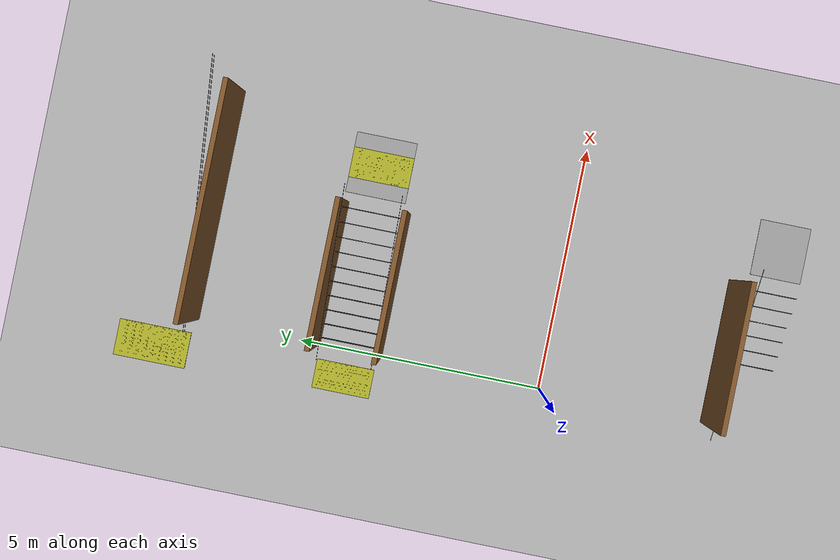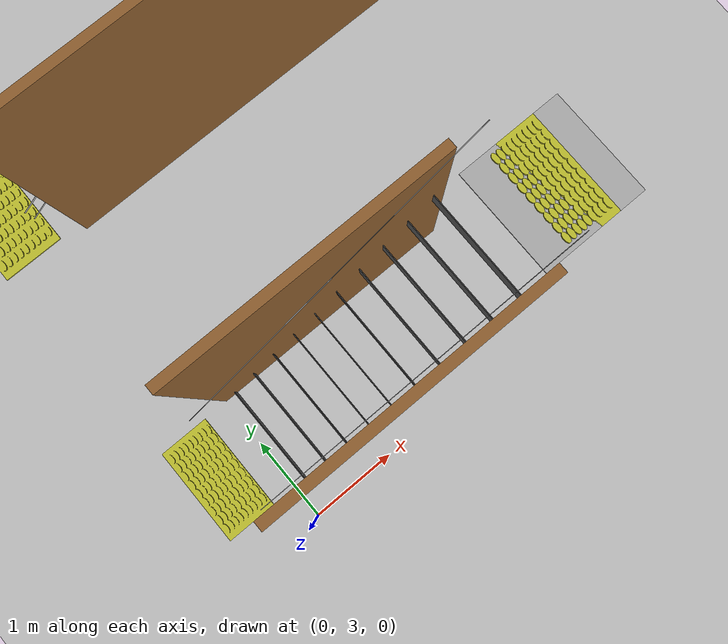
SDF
<sdf version="1.7">
 <world name="default">
  <include><uri>https://fuel.gazebosim.org/1.0/openrobotics/models/Ground%20Plane</uri></include>
  <include><uri>https://fuel.gazebosim.org/1.0/openrobotics/models/Sun</uri></include>
  <model name="tactile_strip_tactile_strip_before_2380114d-61c0-4db8-95cd-3a11f1002797_8a8556f7-3a6e-456c-b705-32682d6e687a">
   <static>true</static>
   <pose>-0.6 4.0 0.0 0 0 0</pose>
   <link name="link">
    <visual name="visual">
     <geometry>
      <mesh><uri>model://data/world-generator/assets/tactile_strip_unit.stl</uri><scale>0.6 1.2 1</scale></mesh>
     </geometry>
     <material><ambient>0.8 0.8 0.2 1</ambient><diffuse>0.8 0.8 0.2 1</diffuse></material>
    </visual>
    <collision name="collision"><geometry><box><size>0.6 1.2 0.02</size></box></geometry></collision>
   </link>
  </model>
  <model name="tactile_strip_tactile_strip_after_2380114d-61c0-4db8-95cd-3a11f1002797_c2bafa8b-1b6a-454e-ac4f-f03ee88ef546">
   <static>true</static>
   <pose>3.749999999999999 4.0 1.5999999999999999 0 0 0</pose>
   <link name="link">
    <visual name="visual">
     <geometry>
      <mesh><uri>model://data/world-generator/assets/tactile_strip_unit.stl</uri><scale>0.6 1.2 1</scale></mesh>
     </geometry>
     <material><ambient>0.8 0.8 0.2 1</ambient><diffuse>0.8 0.8 0.2 1</diffuse></material>
    </visual>
    <collision name="collision"><geometry><box><size>0.6 1.2 0.02</size></box></geometry></collision>
   </link>
  </model>
  <model name="handrail_handrail_2380114d-61c0-4db8-95cd-3a11f1002797_{'height': 0.95, 'extension_length': 0.3, 'offset_from_wall': 0.04}_dd895d16-0f13-45a6-bb25-cd8e64cd3b47">
   <static>true</static>
   <pose>1.5 3.44 1.75 0 -0.48995732625372834 0</pose>
   <link name="link">
    <visual name="visual">
     <geometry>
      <mesh><uri>model://data/world-generator/assets/handrail_unit.stl</uri><scale>4.0 0.25 0.95</scale></mesh>
     </geometry>
     <material><ambient>0.7 0.7 0.7 1</ambient><diffuse>0.7 0.7 0.7 1</diffuse></material>
    </visual>
    <collision name="collision">
     <geometry><cylinder><radius>0.125</radius><length>4.0</length></cylinder></geometry>
    </collision>
   </link>
  </model>
  <model name="handrail_handrail_2380114d-61c0-4db8-95cd-3a11f1002797_{'height': 0.95, 'extension_length': 0.3, 'offset_from_wall': 0.04}_a3f463f3-668c-4367-9701-24da02bdedce">
   <static>true</static>
   <pose>1.5 4.56 1.75 0 -0.48995732625372834 0</pose>
   <link name="link">
    <visual name="visual">
     <geometry>
      <mesh><uri>model://data/world-generator/assets/handrail_unit.stl</uri><scale>4.0 0.25 0.95</scale></mesh>
     </geometry>
     <material><ambient>0.7 0.7 0.7 1</ambient><diffuse>0.7 0.7 0.7 1</diffuse></material>
    </visual>
    <collision name="collision">
     <geometry><cylinder><radius>0.125</radius><length>4.0</length></cylinder></geometry>
    </collision>
   </link>
  </model>
  <model name="riser_riser_0f4c67bf-021a-45f8-92c6-092875decb3c_0b168ed3-7ea6-4166-9fbf-4b085acc85c7">
   <static>true</static>
   <pose>0.15 4.0 0.0 0 0 0</pose>
   <link name="link">
    <visual name="visual">
     <geometry>
      <mesh><uri>model://data/world-generator/assets/riser_unit.stl</uri><scale>1 1.2 0.16</scale></mesh>
     </geometry>
     <material><ambient>0.3 0.3 0.3 1</ambient><diffuse>0.3 0.3 0.3 1</diffuse></material>
    </visual>
    <collision name="collision"><geometry><box><size>0.01 1.2 0.16</size></box></geometry></collision>
   </link>
  </model>
  <model name="riser_riser_56ba4ca1-7edb-4753-bffd-d643aa920a7e_2e5eaf9a-eeb9-49a0-b7e6-5f50fb1637c4">
   <static>true</static>
   <pose>0.44999999999999996 4.0 0.16 0 0 0</pose>
   <link name="link">
    <visual name="visual">
     <geometry>
      <mesh><uri>model://data/world-generator/assets/riser_unit.stl</uri><scale>1 1.2 0.16</scale></mesh>
     </geometry>
     <material><ambient>0.3 0.3 0.3 1</ambient><diffuse>0.3 0.3 0.3 1</diffuse></material>
    </visual>
    <collision name="collision"><geometry><box><size>0.01 1.2 0.16</size></box></geometry></collision>
   </link>
  </model>
  <model name="riser_riser_aa39482c-cc10-46a6-8c8d-65e14d5c979c_4f6b79d0-e20d-4615-96da-080c0f4155cb">
   <static>true</static>
   <pose>0.75 4.0 0.32 0 0 0</pose>
   <link name="link">
    <visual name="visual">
     <geometry>
      <mesh><uri>model://data/world-generator/assets/riser_unit.stl</uri><scale>1 1.2 0.16</scale></mesh>
     </geometry>
     <material><ambient>0.3 0.3 0.3 1</ambient><diffuse>0.3 0.3 0.3 1</diffuse></material>
    </visual>
    <collision name="collision"><geometry><box><size>0.01 1.2 0.16</size></box></geometry></collision>
   </link>
  </model>
  <model name="riser_riser_aef47aba-85f2-47a9-a8ad-6f19306f6455_f2d67954-2f8a-49c9-b6d3-07291a93f0e0">
   <static>true</static>
   <pose>1.05 4.0 0.48 0 0 0</pose>
   <link name="link">
    <visual name="visual">
     <geometry>
      <mesh><uri>model://data/world-generator/assets/riser_unit.stl</uri><scale>1 1.2 0.16</scale></mesh>
     </geometry>
     <material><ambient>0.3 0.3 0.3 1</ambient><diffuse>0.3 0.3 0.3 1</diffuse></material>
    </visual>
    <collision name="collision"><geometry><box><size>0.01 1.2 0.16</size></box></geometry></collision>
   </link>
  </model>
  <model name="riser_riser_650e838f-bc9c-4ae9-829d-48057fdc0816_bafde185-910b-4c3f-a148-b1685ad74749">
   <static>true</static>
   <pose>1.35 4.0 0.64 0 0 0</pose>
   <link name="link">
    <visual name="visual">
     <geometry>
      <mesh><uri>model://data/world-generator/assets/riser_unit.stl</uri><scale>1 1.2 0.16</scale></mesh>
     </geometry>
     <material><ambient>0.3 0.3 0.3 1</ambient><diffuse>0.3 0.3 0.3 1</diffuse></material>
    </visual>
    <collision name="collision"><geometry><box><size>0.01 1.2 0.16</size></box></geometry></collision>
   </link>
  </model>
  <model name="riser_riser_a17315cc-52c6-4d6a-b655-59889c3cf503_74edd328-1a46-45c3-be21-85d3eb1bb8e6">
   <static>true</static>
   <pose>1.6500000000000001 4.0 0.8 0 0 0</pose>
   <link name="link">
    <visual name="visual">
     <geometry>
      <mesh><uri>model://data/world-generator/assets/riser_unit.stl</uri><scale>1 1.2 0.16</scale></mesh>
     </geometry>
     <material><ambient>0.3 0.3 0.3 1</ambient><diffuse>0.3 0.3 0.3 1</diffuse></material>
    </visual>
    <collision name="collision"><geometry><box><size>0.01 1.2 0.16</size></box></geometry></collision>
   </link>
  </model>
  <model name="riser_riser_0e743970-89c8-4c1c-b477-505d78edf11f_32cb2962-36df-4b33-b5bc-f68f71a99067">
   <static>true</static>
   <pose>1.9500000000000002 4.0 0.9600000000000001 0 0 0</pose>
   <link name="link">
    <visual name="visual">
     <geometry>
      <mesh><uri>model://data/world-generator/assets/riser_unit.stl</uri><scale>1 1.2 0.16</scale></mesh>
     </geometry>
     <material><ambient>0.3 0.3 0.3 1</ambient><diffuse>0.3 0.3 0.3 1</diffuse></material>
    </visual>
    <collision name="collision"><geometry><box><size>0.01 1.2 0.16</size></box></geometry></collision>
   </link>
  </model>
  <model name="riser_riser_ee1d7364-8cf7-4684-8c33-de820b228c25_21e7b03e-a898-4749-81aa-2e965841548e">
   <static>true</static>
   <pose>2.25 4.0 1.12 0 0 0</pose>
   <link name="link">
    <visual name="visual">
     <geometry>
      <mesh><uri>model://data/world-generator/assets/riser_unit.stl</uri><scale>1 1.2 0.16</scale></mesh>
     </geometry>
     <material><ambient>0.3 0.3 0.3 1</ambient><diffuse>0.3 0.3 0.3 1</diffuse></material>
    </visual>
    <collision name="collision"><geometry><box><size>0.01 1.2 0.16</size></box></geometry></collision>
   </link>
  </model>
  <model name="riser_riser_8e4c708e-b4e6-4325-8917-a5818f8687a9_7c611999-69f5-4d79-bab2-1ccb9a942b64">
   <static>true</static>
   <pose>2.55 4.0 1.28 0 0 0</pose>
   <link name="link">
    <visual name="visual">
     <geometry>
      <mesh><uri>model://data/world-generator/assets/riser_unit.stl</uri><scale>1 1.2 0.16</scale></mesh>
     </geometry>
     <material><ambient>0.3 0.3 0.3 1</ambient><diffuse>0.3 0.3 0.3 1</diffuse></material>
    </visual>
    <collision name="collision"><geometry><box><size>0.01 1.2 0.16</size></box></geometry></collision>
   </link>
  </model>
  <model name="riser_riser_4d2f33eb-3987-4c9b-b705-4a46a4b2c9cc_3a343302-66c3-4624-9ba4-09040606d264">
   <static>true</static>
   <pose>2.8499999999999996 4.0 1.44 0 0 0</pose>
   <link name="link">
    <visual name="visual">
     <geometry>
      <mesh><uri>model://data/world-generator/assets/riser_unit.stl</uri><scale>1 1.2 0.16</scale></mesh>
     </geometry>
     <material><ambient>0.3 0.3 0.3 1</ambient><diffuse>0.3 0.3 0.3 1</diffuse></material>
    </visual>
    <collision name="collision"><geometry><box><size>0.01 1.2 0.16</size></box></geometry></collision>
   </link>
  </model>
  <model name="wall_staircase_1_left_fc63aef7-f557-46f6-b317-942239e3bee1">
   <static>true</static>
   <pose>1.5 3.35 0.0 0 0 0.0</pose>
   <link name="link">
    <visual name="visual">
     <geometry>
      <mesh><uri>model://data/world-generator/assets/wall_unit.stl</uri><scale>3.0 1 1</scale></mesh>
     </geometry>
     <material><ambient>0.6 0.4 0.2 1</ambient><diffuse>0.6 0.4 0.2 1</diffuse></material>
    </visual>
    <collision name="collision"><geometry><box><size>3.0 0.1 1.2</size></box></geometry></collision>
   </link>
  </model>
  <model name="wall_staircase_1_right_12936ddd-f6f5-4d0c-b6a4-6eaac51be5f9">
   <static>true</static>
   <pose>1.5 4.6499999999999995 0.0 0 0 0.0</pose>
   <link name="link">
    <visual name="visual">
     <geometry>
      <mesh><uri>model://data/world-generator/assets/wall_unit.stl</uri><scale>3.0 1 1</scale></mesh>
     </geometry>
     <material><ambient>0.6 0.4 0.2 1</ambient><diffuse>0.6 0.4 0.2 1</diffuse></material>
    </visual>
    <collision name="collision"><geometry><box><size>3.0 0.1 1.2</size></box></geometry></collision>
   </link>
  </model>
  <model name="platform_staircase_1_landing_359a9a06-f22f-4184-8473-b10db1d0b27e">
   <static>true</static>
   <pose>3.749999999999999 4.0 1.5999999999999999 0 0 0</pose>
   <link name="link">
    <visual name="visual">
     <geometry>
      <mesh><uri>model://data/world-generator/assets/platform_unit.stl</uri><scale>1.2 1.2 1</scale></mesh>
     </geometry>
    </visual>
    <collision name="collision"><geometry><box><size>1.2 1.2 0.01</size></box></geometry></collision>
   </link>
  </model>
  <model name="tactile_strip_tactile_strip_before_e99f2752-ab1f-4d2a-a1d9-9a706f787795_b9c07315-d704-40d7-b5e5-395025c992d8">
   <static>true</static>
   <pose>-0.675 8.0 0.0 0 0 0</pose>
   <link name="link">
    <visual name="visual">
     <geometry>
      <mesh><uri>model://data/world-generator/assets/tactile_strip_unit.stl</uri><scale>0.75 1.5 1</scale></mesh>
     </geometry>
     <material><ambient>0.8 0.8 0.2 1</ambient><diffuse>0.8 0.8 0.2 1</diffuse></material>
    </visual>
    <collision name="collision"><geometry><box><size>0.75 1.5 0.02</size></box></geometry></collision>
   </link>
  </model>
  <model name="handrail_handrail_e99f2752-ab1f-4d2a-a1d9-9a706f787795_{'height': 0.95, 'extension_length': 0.3, 'offset_from_wall': 0.05}_4281d745-f4f5-41e8-b2f1-ba8e8f079b40">
   <static>true</static>
   <pose>2.4 7.3 2.31 0 -0.5155490074589791 0</pose>
   <link name="link">
    <visual name="visual">
     <geometry>
      <mesh>
       <uri>model://data/world-generator/assets/handrail_unit.stl</uri>
       <scale>6.117100687861333 0.25 0.95</scale>
      </mesh>
     </geometry>
     <material><ambient>0.7 0.7 0.7 1</ambient><diffuse>0.7 0.7 0.7 1</diffuse></material>
    </visual>
    <collision name="collision">
     <geometry><cylinder><radius>0.125</radius><length>6.117100687861333</length></cylinder></geometry>
    </collision>
   </link>
  </model>
  <model name="handrail_handrail_e99f2752-ab1f-4d2a-a1d9-9a706f787795_{'height': 0.75, 'extension_length': 0.3, 'offset_from_wall': 0.05}_4aece168-5643-4394-8c12-1170bd99f4e0">
   <static>true</static>
   <pose>2.4 7.3 2.1100000000000003 0 -0.5155490074589791 0</pose>
   <link name="link">
    <visual name="visual">
     <geometry>
      <mesh>
       <uri>model://data/world-generator/assets/handrail_unit.stl</uri>
       <scale>6.117100687861333 0.25 0.75</scale>
      </mesh>
     </geometry>
     <material><ambient>0.7 0.7 0.7 1</ambient><diffuse>0.7 0.7 0.7 1</diffuse></material>
    </visual>
    <collision name="collision">
     <geometry><cylinder><radius>0.125</radius><length>6.117100687861333</length></cylinder></geometry>
    </collision>
   </link>
  </model>
  <model name="wall_stairs_single_flight_left_f1f274e6-447f-40af-b96e-c4f48927b3f7">
   <static>true</static>
   <pose>2.4 7.2 0.0 0 0 0.0</pose>
   <link name="link">
    <visual name="visual">
     <geometry>
      <mesh><uri>model://data/world-generator/assets/wall_unit.stl</uri><scale>4.8 1 1</scale></mesh>
     </geometry>
     <material><ambient>0.6 0.4 0.2 1</ambient><diffuse>0.6 0.4 0.2 1</diffuse></material>
    </visual>
    <collision name="collision"><geometry><box><size>4.8 0.1 1.2</size></box></geometry></collision>
   </link>
  </model>
  <model name="handrail_handrail_2ea9241b-6679-40a4-8127-7ab0cb15bdbf_{'height': 0.95, 'extension_length': 0.3, 'offset_from_wall': 0.04}_0713e387-e1f9-4762-b25e-c83af67adc54">
   <static>true</static>
   <pose>1.5 -3.54 1.75 0 -0.48995732625372834 0</pose>
   <link name="link">
    <visual name="visual">
     <geometry>
      <mesh><uri>model://data/world-generator/assets/handrail_unit.stl</uri><scale>4.0 0.25 0.95</scale></mesh>
     </geometry>
     <material><ambient>0.7 0.7 0.7 1</ambient><diffuse>0.7 0.7 0.7 1</diffuse></material>
    </visual>
    <collision name="collision">
     <geometry><cylinder><radius>0.125</radius><length>4.0</length></cylinder></geometry>
    </collision>
   </link>
  </model>
  <model name="riser_riser_b6228aff-6c39-4b82-82a1-75a04a5216a2_15c2874f-3b48-4aba-912f-cb9c5971f7c6">
   <static>true</static>
   <pose>1.35 -4.0 0.64 0 0 0</pose>
   <link name="link">
    <visual name="visual">
     <geometry>
      <mesh><uri>model://data/world-generator/assets/riser_unit.stl</uri><scale>1 1.0 0.16</scale></mesh>
     </geometry>
     <material><ambient>0.3 0.3 0.3 1</ambient><diffuse>0.3 0.3 0.3 1</diffuse></material>
    </visual>
    <collision name="collision"><geometry><box><size>0.01 1.0 0.16</size></box></geometry></collision>
   </link>
  </model>
  <model name="riser_riser_0420127a-948c-4e92-bb1a-1c0821512112_2bb66bfa-adb2-4779-87bb-fc37d92632c6">
   <static>true</static>
   <pose>1.6500000000000001 -4.0 0.8 0 0 0</pose>
   <link name="link">
    <visual name="visual">
     <geometry>
      <mesh><uri>model://data/world-generator/assets/riser_unit.stl</uri><scale>1 1.0 0.16</scale></mesh>
     </geometry>
     <material><ambient>0.3 0.3 0.3 1</ambient><diffuse>0.3 0.3 0.3 1</diffuse></material>
    </visual>
    <collision name="collision"><geometry><box><size>0.01 1.0 0.16</size></box></geometry></collision>
   </link>
  </model>
  <model name="riser_riser_7a859b45-bb37-4b91-9d60-ae6a9be17842_f96cb54b-b596-4fa3-b699-87b3bce18d9e">
   <static>true</static>
   <pose>1.9500000000000002 -4.0 0.9600000000000001 0 0 0</pose>
   <link name="link">
    <visual name="visual">
     <geometry>
      <mesh><uri>model://data/world-generator/assets/riser_unit.stl</uri><scale>1 1.0 0.16</scale></mesh>
     </geometry>
     <material><ambient>0.3 0.3 0.3 1</ambient><diffuse>0.3 0.3 0.3 1</diffuse></material>
    </visual>
    <collision name="collision"><geometry><box><size>0.01 1.0 0.16</size></box></geometry></collision>
   </link>
  </model>
  <model name="riser_riser_68947b79-2a8c-4d95-b5d2-7d317724cef8_12c84b9e-8c1f-4565-921f-3643605227a1">
   <static>true</static>
   <pose>2.25 -4.0 1.12 0 0 0</pose>
   <link name="link">
    <visual name="visual">
     <geometry>
      <mesh><uri>model://data/world-generator/assets/riser_unit.stl</uri><scale>1 1.0 0.16</scale></mesh>
     </geometry>
     <material><ambient>0.3 0.3 0.3 1</ambient><diffuse>0.3 0.3 0.3 1</diffuse></material>
    </visual>
    <collision name="collision"><geometry><box><size>0.01 1.0 0.16</size></box></geometry></collision>
   </link>
  </model>
  <model name="riser_riser_2851edcf-fdf3-483e-a581-8d7fed676b2f_84033f40-f9f6-4da1-b16d-1603c08977ee">
   <static>true</static>
   <pose>2.55 -4.0 1.28 0 0 0</pose>
   <link name="link">
    <visual name="visual">
     <geometry>
      <mesh><uri>model://data/world-generator/assets/riser_unit.stl</uri><scale>1 1.0 0.16</scale></mesh>
     </geometry>
     <material><ambient>0.3 0.3 0.3 1</ambient><diffuse>0.3 0.3 0.3 1</diffuse></material>
    </visual>
    <collision name="collision"><geometry><box><size>0.01 1.0 0.16</size></box></geometry></collision>
   </link>
  </model>
  <model name="riser_riser_e507df73-6838-4364-a47b-57c27dc0b4f8_20ec289f-3e2a-4088-9498-d46254160dd3">
   <static>true</static>
   <pose>2.8499999999999996 -4.0 1.44 0 0 0</pose>
   <link name="link">
    <visual name="visual">
     <geometry>
      <mesh><uri>model://data/world-generator/assets/riser_unit.stl</uri><scale>1 1.0 0.16</scale></mesh>
     </geometry>
     <material><ambient>0.3 0.3 0.3 1</ambient><diffuse>0.3 0.3 0.3 1</diffuse></material>
    </visual>
    <collision name="collision"><geometry><box><size>0.01 1.0 0.16</size></box></geometry></collision>
   </link>
  </model>
  <model name="wall_stairs_invalid_1_right_2bd78cf2-a5cd-418a-94f3-2311c6ab3b13">
   <static>true</static>
   <pose>1.5 -3.45 0.0 0 0 0.0</pose>
   <link name="link">
    <visual name="visual">
     <geometry>
      <mesh><uri>model://data/world-generator/assets/wall_unit.stl</uri><scale>3.0 1 1</scale></mesh>
     </geometry>
     <material><ambient>0.6 0.4 0.2 1</ambient><diffuse>0.6 0.4 0.2 1</diffuse></material>
    </visual>
    <collision name="collision"><geometry><box><size>3.0 0.1 1.2</size></box></geometry></collision>
   </link>
  </model>
  <model name="platform_stairs_invalid_1_landing_eea04eb0-ce96-4117-92b4-34809efbc66e">
   <static>true</static>
   <pose>3.6999999999999993 -4.0 1.5999999999999999 0 0 0</pose>
   <link name="link">
    <visual name="visual">
     <geometry>
      <mesh><uri>model://data/world-generator/assets/platform_unit.stl</uri><scale>1.1 1.0 1</scale></mesh>
     </geometry>
    </visual>
    <collision name="collision"><geometry><box><size>1.1 1.0 0.01</size></box></geometry></collision>
   </link>
  </model>
 </world>
</sdf>
